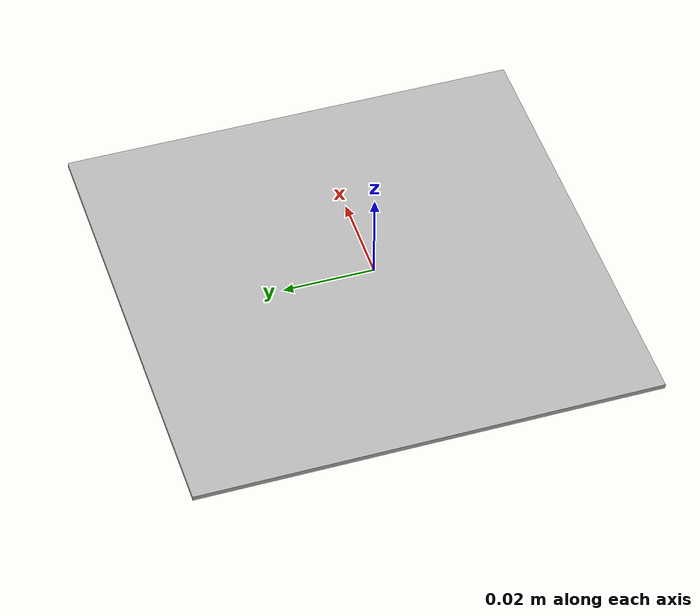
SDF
<?xml version="1.0" ?>
<sdf version="1.5">
    <model name="Aruco_10_100">
      <pose>0 0 0 0 0 0</pose>
      <link name="Aruco_10_100">
        <visual name="visual">
          <geometry>
	     <mesh><uri>model://aruco_10_100/meshes/AR_one.dae</uri></mesh>
          </geometry>
        </visual>
      </link>
    </model>
</sdf>
